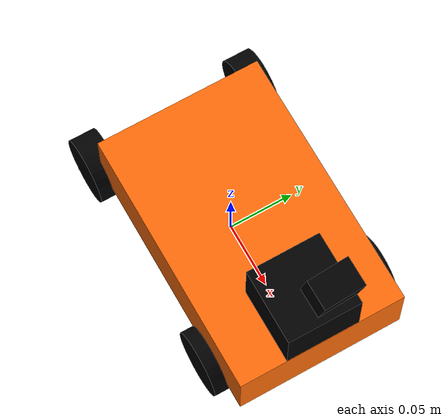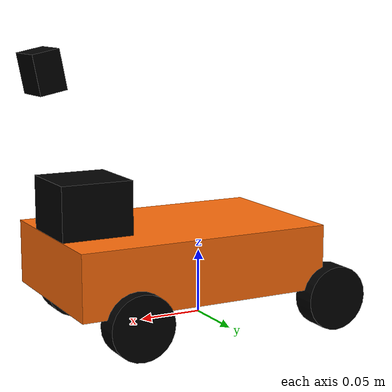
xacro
<?xml version="1.0"?>
<robot xmlns:xacro="http://www.ros.org/wiki/xacro" name="wro_actual">

  <xacro:include filename="$(find robot_system)/urdf/wro.materials.xacro" />
  <!-- Constants for robot dimensions -->
  <xacro:property name="PI" value="3.1415926535897931"/>
  <xacro:property name="base_mass" value="4.0" /> <!-- arbitrary value for base mass -->
  <xacro:property name="base_width" value="0.127" /> <!-- 12.70 cm -->
  <xacro:property name="base_length" value="0.200" /> <!-- 20.00 cm -->
  <xacro:property name="base_height" value="0.050" /> <!-- 6.00 cm -->
  <xacro:property name="wheelbase" value="0.165" /> <!-- 21.50 cm -->
  <xacro:property name="wheel_mass" value="0.34055" /> <!-- arbitrary value for wheel mass -->
  <xacro:property name="wheel_len" value="0.020" /> <!-- 2.00 cm -->
  <xacro:property name="wheel_radius" value="0.025" /> <!-- 2.50 cm -->

  <!-- LIDAR Dimensions -->
  <xacro:property name="lidar_length" value="0.0556"/>  <!-- 55.6 mm -->
  <xacro:property name="lidar_width" value="0.0556"/>   <!-- 55.6 mm -->
  <xacro:property name="lidar_height" value="0.0413"/>  <!-- 41.3 mm -->

  <xacro:property name="lidar_mass" value="0.17"/>
  <xacro:property name="lidar_inertia_ixx" value="0.0001926666667"/>
  <xacro:property name="lidar_inertia_iyy" value="0.0001224141667"/>
  <xacro:property name="lidar_inertia_izz" value="0.0002130808333"/>

  <!-- LIDAR Position Relative to Chassis -->
  <xacro:property name="lidar_pos_x" value="0.072"/> <!-- 9.5 cm forward -->
  <xacro:property name="lidar_pos_y" value="0.0"/>    <!-- Centered in y-axis -->
  <xacro:property name="lidar_pos_z" value="0.0456"/>   <!-- 7.5 cm above the base -->

  <xacro:property name="camera_length" value="0.021"/>   <!-- 25 mm -->
  <xacro:property name="camera_width" value="0.03"/>    <!-- 24 mm -->
  <xacro:property name="camera_height" value="0.03"/>   <!-- 9 mm -->
  <xacro:property name="camera_pos_x" value="0.03"/>   <!-- 8.7 cm forward -->
  <xacro:property name="camera_pos_y" value="0.0"/>      <!-- Centered in y-axis -->
  <xacro:property name="camera_pos_z" value="0.10"/>     <!-- 18.0 cm above base -->
  <xacro:property name="camera_pitch" value="0.191986"/>  <!-- 12 degrees in radians -->
  <xacro:property name="camera_yaw" value="0.05"/>  <!-- 12 degrees in radians -->

  <!-- Base Link -->
  <link name="base_link" />

  <!-- Chassis -->
  <link name="chassis_link">
    <collision>
      <origin xyz="0 0 0" rpy="0 0 0"/>
      <geometry>
        <box size="${base_length} ${base_width} ${base_height}"/>
      </geometry>
    </collision>
    <visual>
      <origin xyz="0 0 0" rpy="0 0 0"/>
      <geometry>
        <box size="${base_length} ${base_width} ${base_height}"/>
      </geometry>
      <material name="orange"/>
    </visual>
    <inertial>
      <origin xyz="0 0 0" rpy="0 0 0"/>
      <mass value="${base_mass}"/>
      <inertia
        ixx="0.000270" ixy="0.0" ixz="0.0"
        iyy="0.000270" iyz="0.0"
        izz="0.000426"/>
    </inertial>
  </link>

  <joint name="chassis_joint" type="fixed">
    <parent link="base_link"/>
    <child link="chassis_link"/>
    <origin xyz="0.025 0 0.05" rpy="0 0 0"/>
    <axis xyz="0 0 1"/>
    <dynamics damping="0.2"/>
  </joint>

  <!-- Rear Wheels -->

  <!-- Rear Right Wheel -->
  <link name="rear_right_wheel">
    <collision>
      <origin xyz="0 0 0" rpy="${PI/2} 0 ${PI/2}"/>
      <geometry>
        <cylinder length="${wheel_len}" radius="${wheel_radius}"/>
      </geometry>
    </collision>
    <visual>
      <origin xyz="0 0 0" rpy="${PI/2} 0 ${PI/2}"/>
      <geometry>
        <cylinder length="${wheel_len}" radius="${wheel_radius}"/>
      </geometry>
      <material name="black"/>
    </visual>
    <inertial>
      <origin xyz="0 0 0" rpy="${PI/2} 0 ${PI/2}"/>
      <mass value="${wheel_mass}"/>
      <inertia
        ixx="0.000270" ixy="0.0" ixz="0.0"
        iyy="0.000270" iyz="0.0"
        izz="0.000426"/>
    </inertial>
  </link>

  <joint name="rear_right_wheel_joint" type="continuous">
    <parent link="base_link"/>
    <child link="rear_right_wheel"/>
    <origin xyz="-${wheelbase/2} -${base_width/2} 0.018" rpy="0 0 ${PI/2}"/>
    <axis xyz="1 0 0"/>
    <limit effort="100.0" velocity="100.0"/>
    <dynamics damping="0.2"/>
  </joint>

  <!-- Rear Left Wheel -->
  <link name="rear_left_wheel">
    <collision>
      <origin xyz="0 0 0" rpy="${PI/2} 0 ${PI/2}"/>
      <geometry>
        <cylinder length="${wheel_len}" radius="${wheel_radius}"/>
      </geometry>
    </collision>
    <visual>
      <origin xyz="0 0 0" rpy="${PI/2} 0 ${PI/2}"/>
      <geometry>
        <cylinder length="${wheel_len}" radius="${wheel_radius}"/>
      </geometry>
      <material name="black"/>
    </visual>
    <inertial>
      <origin xyz="0 0 0" rpy="${PI/2} 0 ${PI/2}"/>
      <mass value="${wheel_mass}"/>
      <inertia
        ixx="0.000270" ixy="0.0" ixz="0.0"
        iyy="0.000270" iyz="0.0"
        izz="0.000426"/>
    </inertial>
  </link>

  <joint name="rear_left_wheel_joint" type="continuous">
    <parent link="base_link"/>
    <child link="rear_left_wheel"/>
    <origin xyz="-${wheelbase/2} ${base_width/2} 0.018" rpy="0 0 ${PI/2}"/>
    <axis xyz="1 0 0"/>
    <limit effort="100.0" velocity="100.0"/>
    <dynamics damping="0.2"/>
  </joint>

  <!-- Front Wheels -->

  <!-- Front Right Wheel -->
  <link name="front_right_wheel">
    <collision>
      <origin xyz="0 0 0" rpy="${PI/2} 0 ${PI/2}"/>
      <geometry>
        <cylinder length="${wheel_len}" radius="${wheel_radius}"/>
      </geometry>
    </collision>
    <visual>
      <origin xyz="0 0 0" rpy="${PI/2} 0 ${PI/2}"/>
      <geometry>
        <cylinder length="${wheel_len}" radius="${wheel_radius}"/>
      </geometry>
      <material name="black"/>
    </visual>
    <inertial>
      <origin xyz="0 0 0" rpy="${PI/2} 0 ${PI/2}"/>
      <mass value="${wheel_mass}"/>
      <inertia
        ixx="0.000270" ixy="0.0" ixz="0.0"
        iyy="0.000270" iyz="0.0"
        izz="0.000426"/>
    </inertial>
  </link>

  <joint name="front_right_wheel_joint" type="revolute">
    <parent link="base_link"/>
    <child link="front_right_wheel"/>
    <origin xyz="${wheelbase/2} -${base_width/2} 0.018" rpy="0 0 ${PI/2}"/>
    <axis xyz="0 0 1"/>
    <limit lower="-0.4" upper="0.4" effort="100.0" velocity="0.0"/>
    <dynamics damping="0.2"/>
  </joint>

  <!-- Front Left Wheel -->
  <link name="front_left_wheel">
    <collision>
      <origin xyz="0 0 0" rpy="${PI/2} 0 ${PI/2}"/>
      <geometry>
        <cylinder length="${wheel_len}" radius="${wheel_radius}"/>
      </geometry>
    </collision>
    <visual>
      <origin xyz="0 0 0" rpy="${PI/2} 0 ${PI/2}"/>
      <geometry>
        <cylinder length="${wheel_len}" radius="${wheel_radius}"/>
      </geometry>
      <material name="black"/>
    </visual>
    <inertial>
      <origin xyz="0 0 0" rpy="${PI/2} 0 ${PI/2}"/>
      <mass value="${wheel_mass}"/>
      <inertia
        ixx="0.000270" ixy="0.0" ixz="0.0"
        iyy="0.000270" iyz="0.0"
        izz="0.000426"/>
    </inertial>
  </link>

  <joint name="front_left_wheel_joint" type="revolute">
    <parent link="base_link"/>
    <child link="front_left_wheel"/>
    <origin xyz="${wheelbase/2} ${base_width/2} 0.018" rpy="0 0 ${PI/2}"/>
    <axis xyz="0 0 1"/>
    <limit lower="-0.4" upper="0.4" effort="100.0" velocity="0.0"/>
    <dynamics damping="0.2"/>
  </joint>

  <!-- LIDAR Link -->
  <link name="lidar_link">
    <inertial>
      <origin xyz="0 0 0" rpy="0 0 0"/>
      <mass value="${lidar_mass}"/>
      <inertia
        ixx="${lidar_inertia_ixx}" ixy="0" ixz="0"
        iyy="${lidar_inertia_iyy}" iyz="0"
        izz="${lidar_inertia_izz}"/>
    </inertial>
    <visual>
      <origin xyz="0 0 0" rpy="0 0 0"/>
      <geometry>
        <box size="${lidar_length} ${lidar_width} ${lidar_height}"/>
      </geometry>
      <material name="black"/>
    </visual>
    <collision>
      <origin xyz="0 0 0" rpy="0 0 0"/>
      <geometry>
        <box size="${lidar_length} ${lidar_width} ${lidar_height}"/>
      </geometry>
    </collision>
  </link>

  <!-- LIDAR Joint -->
  <joint name="lidar_joint" type="fixed">
    <parent link="chassis_link"/>
    <child link="lidar_link"/>
    <origin xyz="${lidar_pos_x} ${lidar_pos_y} ${lidar_pos_z}" rpy="0 0 0"/>
  </joint>

  <!-- Camera Link -->
  <link name="camera_link">
    <inertial>
      <origin xyz="0 0 0" rpy="0 0 0"/>
      <mass value="0.05"/>  <!-- Adjust mass as necessary -->
      <inertia
        ixx="0.00002" ixy="0" ixz="0"
        iyy="0.00002" iyz="0"
        izz="0.00002"/>
    </inertial>
    <visual>
      <origin xyz="0 0 0" rpy="0 0 0"/>
      <geometry>
        <box size="${camera_length} ${camera_width} ${camera_height}"/>
      </geometry>
      <material name="black"/>
    </visual>
    <collision>
      <origin xyz="0 0 0" rpy="0 0 0"/>
      <geometry>
        <box size="${camera_length} ${camera_width} ${camera_height}"/>
      </geometry>
    </collision>
  </link>

  <!-- Camera Joint -->
  <joint name="camera_joint" type="fixed">
    <parent link="lidar_link"/>
    <child link="camera_link"/>
    <!-- Position and orientation for the camera relative to the lidar -->
    <origin xyz="${camera_pos_x} ${camera_pos_y} ${camera_pos_z}" rpy="0 ${camera_pitch} ${camera_yaw}"/>
  </joint>
</robot>

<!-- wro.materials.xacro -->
<robot>

  <material name="black">
    <color rgba="0.0 0.0 0.0 1.0"/>
  </material>

  <material name="blue">
    <color rgba="0.0 0.0 0.8 1.0"/>
  </material>

  <material name="green">
    <color rgba="0.0 0.8 0.0 1.0"/>
  </material>

  <material name="grey">
    <color rgba="0.2 0.2 0.2 1.0"/>
  </material>

  <material name="orange">
    <color rgba="${255/255} ${108/255} ${10/255} 1.0"/>
  </material>

  <material name="brown">
    <color rgba="${222/255} ${207/255} ${195/255} 1.0"/>
  </material>

  <material name="red">
    <color rgba="0.8 0.0 0.0 1.0"/>
  </material>

  <material name="white">
    <color rgba="1.0 1.0 1.0 1.0"/>
  </material>

  <material name="invisible">
    <color rgba="0.0 0.0 0.0 0.0"/>
  </material>

</robot>
